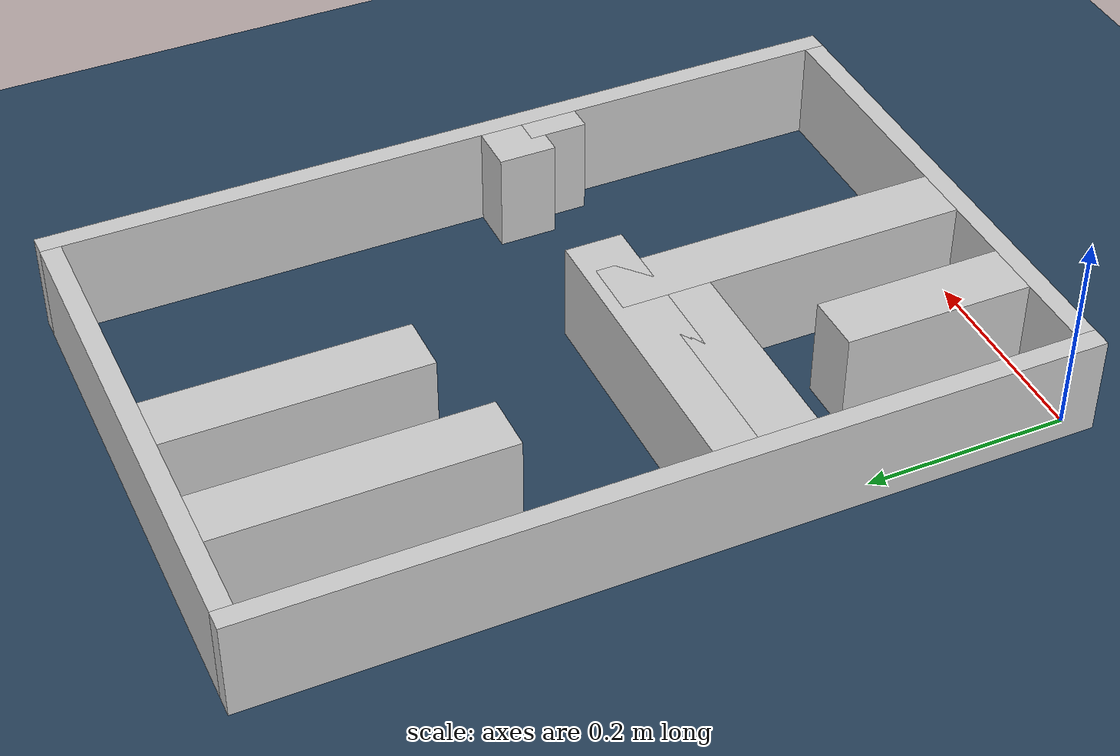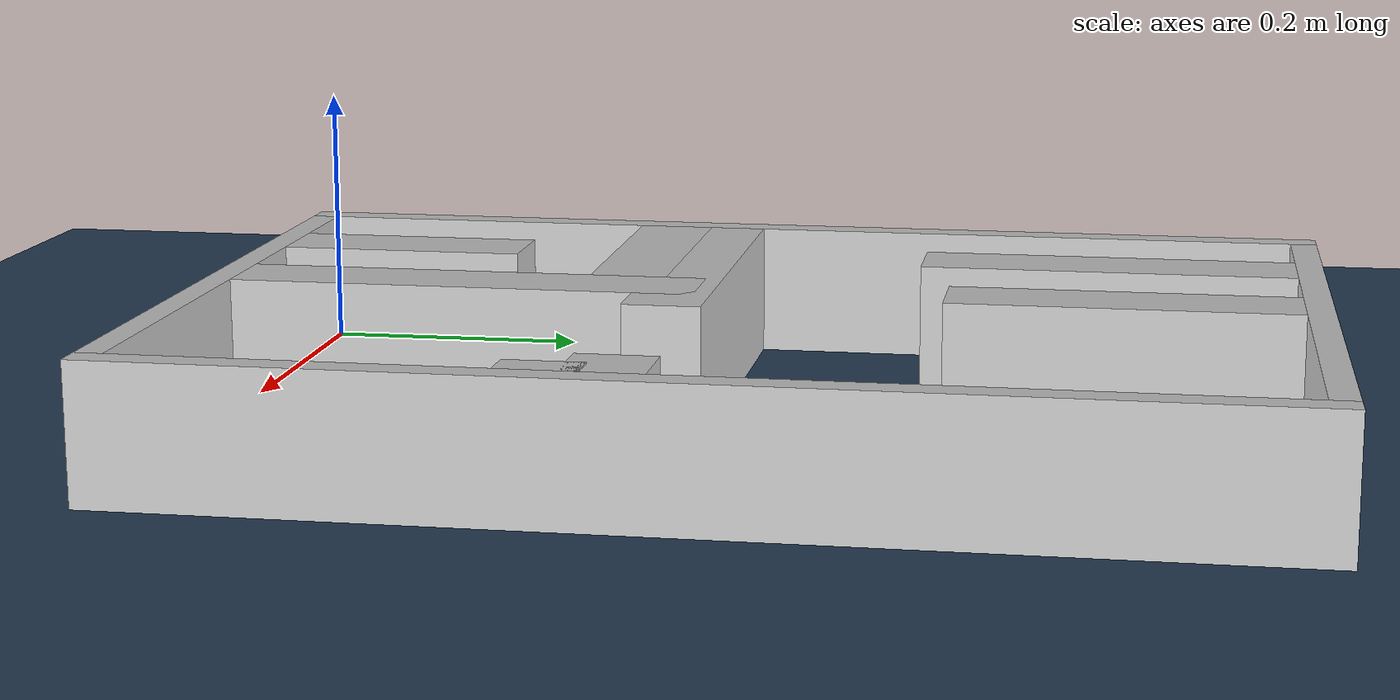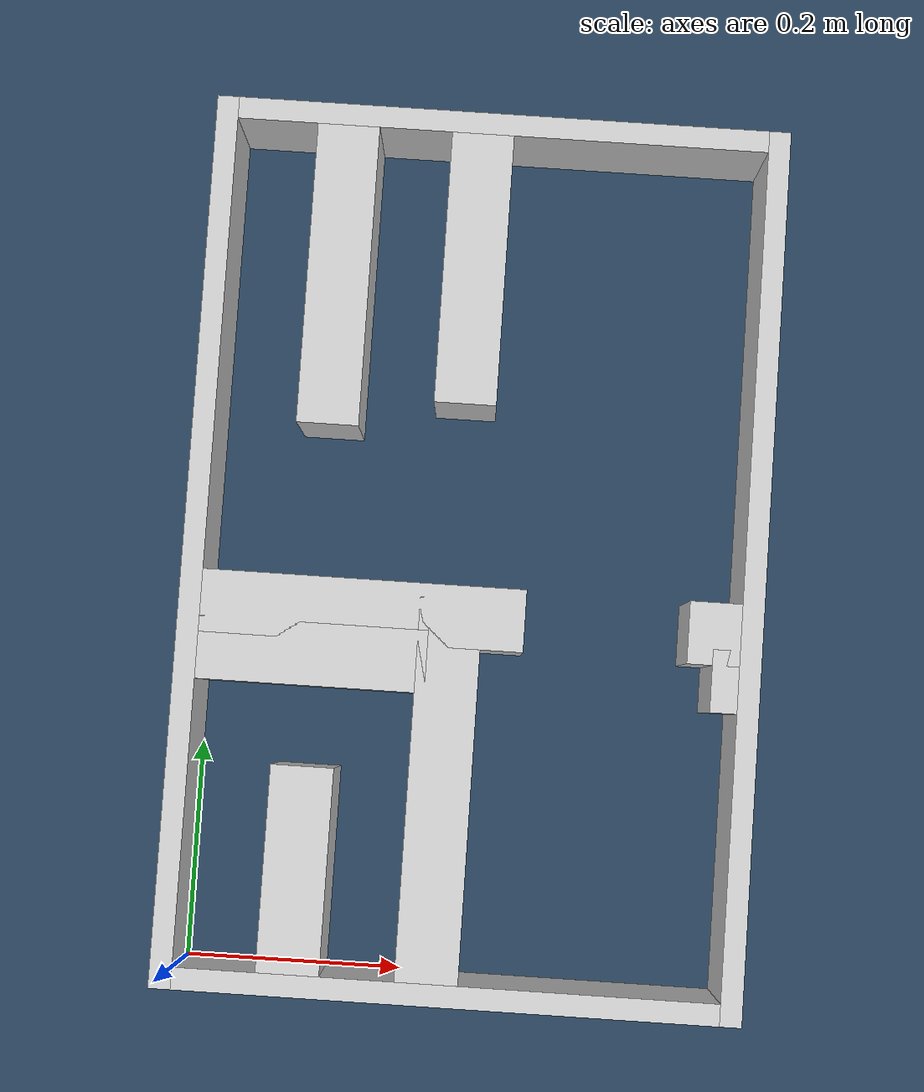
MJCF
<?xml version="1.0" ?>
<mujoco model="generated_real_template">
  <compiler angle="degree"/>
  <option timestep="0.002" integrator="implicitfast" iterations="100" cone="elliptic"/>
  <default>
    <geom density="1"/>
  </default>
  <asset>
    <texture builtin="gradient" height="3072" rgb1="0.3 0.5 0.7" rgb2="0 0 0" type="skybox" width="512"/>
    <texture builtin="checker" height="300" mark="edge" markrgb="0.8 0.8 0.8" name="groundplane" rgb1="0.2 0.3 0.4" rgb2="0.1 0.2 0.3" type="2d" width="300"/>
    <material name="groundplane" reflectance="0.2" texrepeat="5 5" texture="groundplane" texuniform="true"/>
  </asset>
  <worldbody>
    <light dir="0 0 -1" directional="true" pos="0 0 1.5"/>
    <geom name="floor" type="plane" condim="4" friction="0.5 0.005 0.001" material="groundplane" size="0 0 0.05"/>
    <body name="walls">
      <geom name="wall_boundary_left" type="box" condim="4" friction="1.0 0.005 0.0001" rgba="0.8 0.8 0.8 1" pos="-0.010000 0.387500 0.050000" euler="0 0 0.000000" size="0.010000 0.407500 0.050000"/>
      <geom name="wall_boundary_right" type="box" condim="4" friction="1.0 0.005 0.0001" rgba="0.8 0.8 0.8 1" pos="0.500000 0.387500 0.050000" euler="0 0 0.000000" size="0.010000 0.407500 0.050000"/>
      <geom name="wall_boundary_bottom" type="box" condim="4" friction="1.0 0.005 0.0001" rgba="0.8 0.8 0.8 1" pos="0.245000 -0.010000 0.050000" euler="0 0 0.000000" size="0.245000 0.010000 0.050000"/>
      <geom name="wall_boundary_top" type="box" condim="4" friction="1.0 0.005 0.0001" rgba="0.8 0.8 0.8 1" pos="0.245000 0.785000 0.050000" euler="0 0 0.000000" size="0.245000 0.010000 0.050000"/>
      <geom name="wall_inner_1_1" type="box" condim="4" friction="1.0 0.005 0.0001" rgba="0.8 0.8 0.8 1" pos="0.103830 0.286411 0.050000" euler="0 0 0.000000" size="0.103830 0.028500 0.050000"/>
      <geom name="wall_inner_1_2" type="box" condim="4" friction="1.0 0.005 0.0001" rgba="0.8 0.8 0.8 1" pos="0.477715 0.286411 0.050000" euler="0 0 0.000000" size="0.012285 0.028500 0.050000"/>
      <geom name="wall_inner_2_1" type="box" condim="4" friction="1.0 0.005 0.0001" rgba="0.8 0.8 0.8 1" pos="0.102805 0.092747 0.050000" euler="0 0 90.000000" size="0.092747 0.028500 0.050000"/>
      <geom name="wall_inner_2_2" type="box" condim="4" friction="1.0 0.005 0.0001" rgba="0.8 0.8 0.8 1" pos="0.102805 0.635814 0.050000" euler="0 0 90.000000" size="0.139186 0.028500 0.050000"/>
      <geom name="wall_inner_3_1" type="box" condim="4" friction="1.0 0.005 0.0001" rgba="0.8 0.8 0.8 1" pos="0.226926 0.172403 0.050000" euler="0 0 90.000000" size="0.172403 0.028500 0.050000"/>
      <geom name="wall_inner_3_2" type="box" condim="4" friction="1.0 0.005 0.0001" rgba="0.8 0.8 0.8 1" pos="0.226926 0.649184 0.050000" euler="0 0 90.000000" size="0.125816 0.028500 0.050000"/>
      <geom name="wall_inner_4_1" type="box" condim="4" friction="1.0 0.005 0.0001" rgba="0.8 0.8 0.8 1" pos="0.147133 0.328929 0.050000" euler="0 0 0.000000" size="0.147133 0.028500 0.050000"/>
      <geom name="wall_inner_4_2" type="box" condim="4" friction="1.0 0.005 0.0001" rgba="0.8 0.8 0.8 1" pos="0.466143 0.328929 0.050000" euler="0 0 0.000000" size="0.023857 0.028500 0.050000"/>
    </body>
  </worldbody>
</mujoco>
